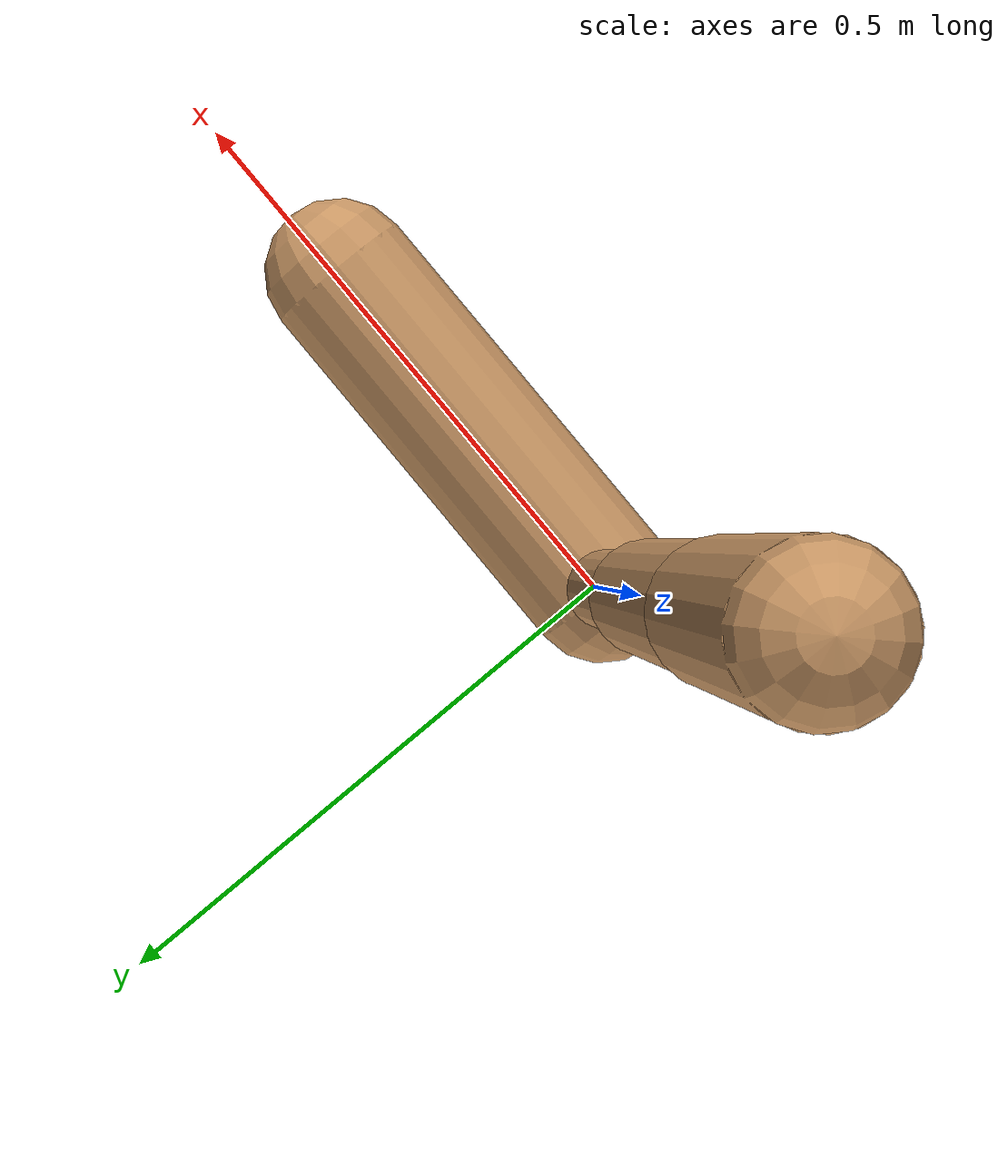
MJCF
<mujoco model="walker2d">
  <compiler angle="degree" coordinate="global" inertiafromgeom="true" />
  <default>
    <joint armature="0.01" damping=".1" limited="true" />
    <geom conaffinity="0" condim="3" contype="1" density="1000" friction="0.8 .1 .1" rgba="0.8 0.6 .4 1" />
  </default>
  <option integrator="RK4" timestep="0.002" />
  <worldbody>

    <body name="torso" pos="0 0 0.0910304093195452">
      <joint armature="0" axis="1 0 0" damping="0" limited="false" name="ignorex" pos="0 0 0" stiffness="0" type="slide" />
      <joint armature="0" axis="0 0 1" damping="0" limited="false" name="ignorez" pos="0 0 0" ref="1.25" stiffness="0" type="slide" />
      <joint armature="0" axis="0 1 0" damping="0" limited="false" name="ignorey" pos="0 0 0" stiffness="0" type="hinge" />
      <geom fromto="0 0 1.45 0 0 1.05" name="torso_geom" size="0.04234536787466606" type="capsule" />
      <body name="thigh">
        <joint axis="0 -1 0" name="thigh_joint" pos="0 0 1.05" range="-150 0" type="hinge" />
        <geom fromto="0.0 0.0 1.05 0.0 0.0 0.5568803324275838" name="thigh_geom" size="0.040176422757556576" type="capsule" />
        <body name="leg" pos="0.0 0.0 -0.04311966757241614">
          <joint axis="0 -1 0" name="leg_joint" pos="0 0 0.6" range="-150 0" type="hinge" />
          <geom fromto="0.0 0.0 0.6 0.0 0.0 0.05208925825287095" name="leg_geom" size="0.03214113820604526" type="capsule" />
          <body name="foot" pos="0.0 0.0 -0.04791074174712905">
            <joint axis="0 -1 0" name="foot_joint" pos="0 0 0.1" range="-45 45" type="hinge" />
            <geom fromto="-0.0 0.0 0.1 0.3353439483063263 0.0 0.1" name="foot_geom" size="0.06142343714702709" type="capsule" />
          </body>
        </body>
      </body>

      <body name="thigh_left">
        <joint axis="0 -1 0" name="thigh_left_joint" pos="0 0 1.05" range="-150 0" type="hinge" />
        <geom fromto="0.0 0.0 1.05 0.0 0.0 0.5568803324275838" name="thigh_left_geom" rgba=".7 .3 .6 1" size="0.040176422757556576" type="capsule" />
        <body name="leg_left" pos="0.0 0.0 -0.04311966757241614">
          <joint axis="0 -1 0" name="leg_left_joint" pos="0 0 0.6" range="-150 0" type="hinge" />
          <geom fromto="0.0 0.0 0.6 0.0 0.0 0.05208925825287095" name="leg_left_geom" rgba=".7 .3 .6 1" size="0.03214113820604526" type="capsule" />
          <body name="foot_left" pos="0.0 0.0 -0.04791074174712905">
            <joint axis="0 -1 0" name="foot_left_joint" pos="0 0 0.1" range="-45 45" type="hinge" />
            <geom fromto="-0.0 0.0 0.1 0.3353439483063263 0.0 0.1" name="foot_left_geom" rgba=".7 .3 .6 1" size="0.06142343714702709" type="capsule" />
          </body>
        </body>
      </body>
    </body>
  </worldbody>
  <actuator>

    <motor ctrllimited="true" ctrlrange="-1.0 1.0" gear="100" joint="thigh_joint" />
    <motor ctrllimited="true" ctrlrange="-1.0 1.0" gear="100" joint="leg_joint" />
    <motor ctrllimited="true" ctrlrange="-1.0 1.0" gear="100" joint="foot_joint" />
    <motor ctrllimited="true" ctrlrange="-1.0 1.0" gear="100" joint="thigh_left_joint" />
    <motor ctrllimited="true" ctrlrange="-1.0 1.0" gear="100" joint="leg_left_joint" />
    <motor ctrllimited="true" ctrlrange="-1.0 1.0" gear="100" joint="foot_left_joint" />

  </actuator>
</mujoco>
